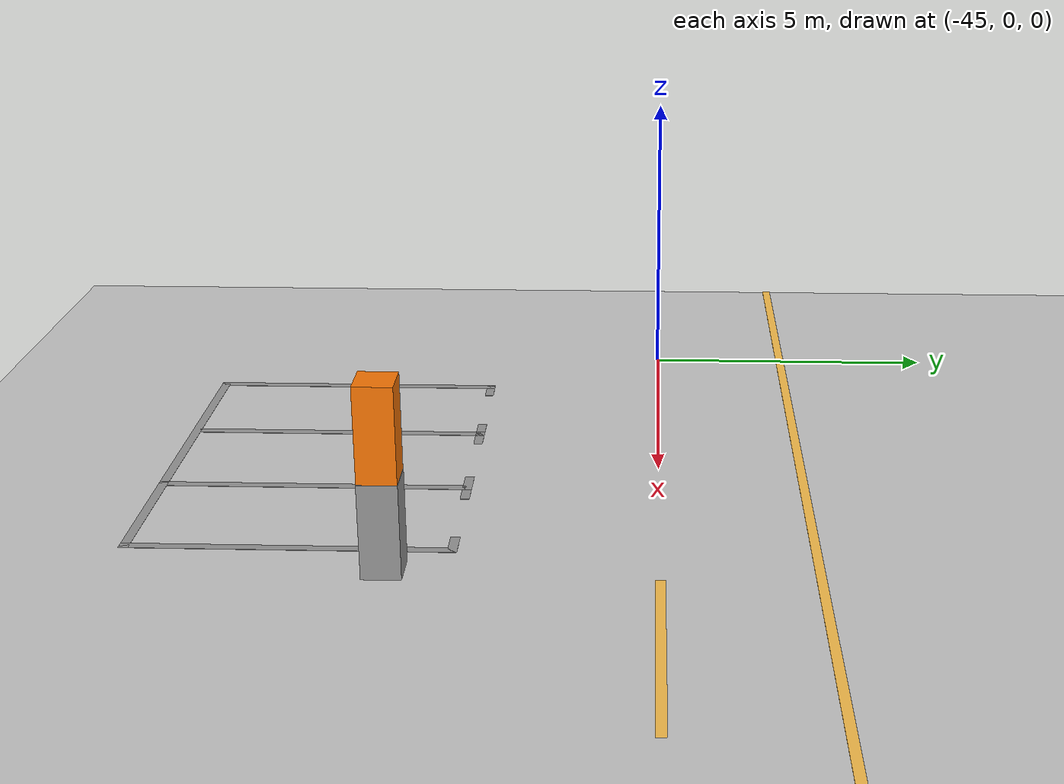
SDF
<sdf version="1.7">
 <world name="default">
  <model name="ground_plane">
   <static>1</static>
   <link name="link">
    <collision name="collision">
     <geometry><plane><normal>0 0 1</normal><size>100 100</size></plane></geometry>
     <surface><friction><ode><mu>100</mu><mu2>50</mu2></ode></friction></surface>
    </collision>
    <visual name="visual">
     <cast_shadows>0</cast_shadows>
     <geometry><plane><normal>0 0 1</normal><size>100 100</size></plane></geometry>
     <material>
      <script><uri>file://media/materials/scripts/gazebo.material</uri><name>Gazebo/Grey</name></script>
     </material>
    </visual>
   </link>
  </model>
  <model name="line_yellow_0_clone_0">
   <pose>-33.0972 0.143204 0 0 -0 0</pose>
   <link name="Wall_0">
    <collision name="Wall_0_Collision">
     <geometry><box><size>4 0.15 0.005</size></box></geometry>
     <pose>0 0 0.0025 0 -0 0</pose>
    </collision>
    <visual name="Wall_0_Visual">
     <pose>0 0 0.0025 0 -0 0</pose>
     <geometry><box><size>4 0.15 0.005</size></box></geometry>
     <material>
      <script><uri>file://media/materials/scripts/gazebo.material</uri><name>Gazebo/Grey</name></script>
      <ambient>1 0.764706 0.305882 1</ambient>
     </material>
     <meta><layer>0</layer></meta>
    </visual>
    <pose>-1.0475 -0.1225 0 0 -0 0</pose>
   </link>
   <static>1</static>
  </model>
  <model name="carport1_4_clone_8">
   <pose>-39.8001 -7.29993 0 0 -0 3.14141</pose>
   <link name="Wall_105">
    <collision name="Wall_105_Collision">
     <geometry><box><size>0.61 0.6 1.5</size></box></geometry>
     <pose>0 0 0.75 0 -0 0</pose>
    </collision>
    <visual name="Wall_105_Visual">
     <pose>0 0 0.75 0 -0 0</pose>
     <geometry><box><size>0.61 0.6 1.5</size></box></geometry>
     <material>
      <script><uri>file://media/materials/scripts/gazebo.material</uri><name>Gazebo/Grey</name></script>
      <ambient>1 1 1 1</ambient>
     </material>
     <meta><layer>0</layer></meta>
    </visual>
    <pose>-3.47407 -3.2865 0 0 -0 0</pose>
   </link>
   <link name="Wall_116">
    <collision name="Wall_116_Collision">
     <geometry><box><size>5.1 0.15 0.005</size></box></geometry>
     <pose>0 0 0.0025 0 -0 0</pose>
    </collision>
    <visual name="Wall_116_Visual">
     <pose>0 0 0.0025 0 -0 0</pose>
     <geometry><box><size>5.1 0.15 0.005</size></box></geometry>
     <material>
      <script><uri>file://media/materials/scripts/gazebo.material</uri><name>Gazebo/Grey</name></script>
      <ambient>1 1 1 1</ambient>
     </material>
     <meta><layer>0</layer></meta>
    </visual>
    <pose>-2.82307 -1.7385 0 0 -0 1.5708</pose>
   </link>
   <link name="Wall_124">
    <collision name="Wall_124_Collision">
     <geometry><box><size>5.1 0.15 0.005</size></box></geometry>
     <pose>0 0 0.0025 0 -0 0</pose>
    </collision>
    <visual name="Wall_124_Visual">
     <pose>0 0 0.0025 0 -0 0</pose>
     <geometry><box><size>5.1 0.15 0.005</size></box></geometry>
     <material>
      <script><uri>file://media/materials/scripts/gazebo.material</uri><name>Gazebo/Grey</name></script>
      <ambient>1 1 1 1</ambient>
     </material>
     <meta><layer>0</layer></meta>
    </visual>
    <pose>3.70393 -1.7305 0 0 -0 1.5708</pose>
   </link>
   <link name="Wall_146">
    <collision name="Wall_146_Collision">
     <geometry><box><size>6.67711 0.15 0.005</size></box></geometry>
     <pose>0 0 0.0025 0 -0 0</pose>
    </collision>
    <visual name="Wall_146_Visual">
     <pose>0 0 0.0025 0 -0 0</pose>
     <geometry><box><size>6.67711 0.15 0.005</size></box></geometry>
     <material>
      <script><uri>file://media/materials/scripts/gazebo.material</uri><name>Gazebo/Grey</name></script>
      <ambient>1 1 1 1</ambient>
     </material>
     <meta><layer>0</layer></meta>
    </visual>
    <pose>0.440428 0.7405 0 0 -0 0.001226</pose>
   </link>
   <link name="Wall_168">
    <collision name="Wall_168_Collision">
     <geometry><box><size>5.1 0.15 0.005</size></box></geometry>
     <pose>0 0 0.0025 0 -0 0</pose>
    </collision>
    <visual name="Wall_168_Visual">
     <pose>0 0 0.0025 0 -0 0</pose>
     <geometry><box><size>5.1 0.15 0.005</size></box></geometry>
     <material>
      <script><uri>file://media/materials/scripts/gazebo.material</uri><name>Gazebo/Grey</name></script>
      <ambient>1 1 1 1</ambient>
     </material>
     <meta><layer>0</layer></meta>
    </visual>
    <pose>-0.64827 -1.73839 0 0 -0 1.57088</pose>
   </link>
   <link name="Wall_173">
    <collision name="Wall_173_Collision">
     <geometry><box><size>5.1 0.15 0.005</size></box></geometry>
     <pose>0 0 0.0025 0 -0 0</pose>
    </collision>
    <visual name="Wall_173_Visual">
     <pose>0 0 0.0025 0 -0 0</pose>
     <geometry><box><size>5.1 0.15 0.005</size></box></geometry>
     <material>
      <script><uri>file://media/materials/scripts/gazebo.material</uri><name>Gazebo/Grey</name></script>
      <ambient>1 1 1 1</ambient>
     </material>
     <meta><layer>0</layer></meta>
    </visual>
    <pose>1.52673 -1.73839 0 0 -0 1.57088</pose>
   </link>
   <link name="Wall_177">
    <collision name="Wall_177_Collision">
     <geometry><box><size>0.6 0.59 3</size></box></geometry>
     <pose>0 0 1.5 0 -0 0</pose>
    </collision>
    <visual name="Wall_177_Visual">
     <pose>0 0 1.5 0 -0 0</pose>
     <geometry><box><size>0.6 0.59 3</size></box></geometry>
     <material>
      <script><uri>file://media/materials/scripts/gazebo.material</uri><name>Gazebo/Grey</name></script>
      <ambient>0.996078 0.47451 0.0196078 1</ambient>
     </material>
     <meta><layer>0</layer></meta>
    </visual>
    <pose>-3.47407 -3.2865 0 0 -0 0</pose>
   </link>
   <link name="Wall_179">
    <collision name="Wall_179_Collision">
     <geometry><box><size>0.5 0.15 0.005</size></box></geometry>
     <pose>0 0 0.0025 0 -0 0</pose>
    </collision>
    <visual name="Wall_179_Visual">
     <pose>0 0 0.0025 0 -0 0</pose>
     <geometry><box><size>0.5 0.15 0.005</size></box></geometry>
     <material>
      <script><uri>file://media/materials/scripts/gazebo.material</uri><name>Gazebo/Grey</name></script>
      <ambient>1 1 1 1</ambient>
     </material>
     <meta><layer>0</layer></meta>
    </visual>
    <pose>-2.64807 -4.2135 0 0 -0 0</pose>
   </link>
   <link name="Wall_181">
    <collision name="Wall_181_Collision">
     <geometry><box><size>0.5 0.15 0.005</size></box></geometry>
     <pose>0 0 0.0025 0 -0 0</pose>
    </collision>
    <visual name="Wall_181_Visual">
     <pose>0 0 0.0025 0 -0 0</pose>
     <geometry><box><size>0.5 0.15 0.005</size></box></geometry>
     <material>
      <script><uri>file://media/materials/scripts/gazebo.material</uri><name>Gazebo/Grey</name></script>
      <ambient>1 1 1 1</ambient>
     </material>
     <meta><layer>0</layer></meta>
    </visual>
    <pose>-0.823072 -4.2135 0 0 -0 3.14159</pose>
   </link>
   <link name="Wall_183">
    <collision name="Wall_183_Collision">
     <geometry><box><size>0.5 0.15 0.005</size></box></geometry>
     <pose>0 0 0.0025 0 -0 0</pose>
    </collision>
    <visual name="Wall_183_Visual">
     <pose>0 0 0.0025 0 -0 0</pose>
     <geometry><box><size>0.5 0.15 0.005</size></box></geometry>
     <material>
      <script><uri>file://media/materials/scripts/gazebo.material</uri><name>Gazebo/Grey</name></script>
      <ambient>1 1 1 1</ambient>
     </material>
     <meta><layer>0</layer></meta>
    </visual>
    <pose>-0.473072 -4.2135 0 0 -0 0</pose>
   </link>
   <link name="Wall_185">
    <collision name="Wall_185_Collision">
     <geometry><box><size>0.5 0.15 0.005</size></box></geometry>
     <pose>0 0 0.0025 0 -0 0</pose>
    </collision>
    <visual name="Wall_185_Visual">
     <pose>0 0 0.0025 0 -0 0</pose>
     <geometry><box><size>0.5 0.15 0.005</size></box></geometry>
     <material>
      <script><uri>file://media/materials/scripts/gazebo.material</uri><name>Gazebo/Grey</name></script>
      <ambient>1 1 1 1</ambient>
     </material>
     <meta><layer>0</layer></meta>
    </visual>
    <pose>1.35193 -4.2135 0 0 -0 3.14159</pose>
   </link>
   <link name="Wall_187">
    <collision name="Wall_187_Collision">
     <geometry><box><size>0.5 0.15 0.005</size></box></geometry>
     <pose>0 0 0.0025 0 -0 0</pose>
    </collision>
    <visual name="Wall_187_Visual">
     <pose>0 0 0.0025 0 -0 0</pose>
     <geometry><box><size>0.5 0.15 0.005</size></box></geometry>
     <material>
      <script><uri>file://media/materials/scripts/gazebo.material</uri><name>Gazebo/Grey</name></script>
      <ambient>1 1 1 1</ambient>
     </material>
     <meta><layer>0</layer></meta>
    </visual>
    <pose>1.70193 -4.2135 0 0 -0 0</pose>
   </link>
   <link name="Wall_189">
    <collision name="Wall_189_Collision">
     <geometry><box><size>0.5 0.15 0.005</size></box></geometry>
     <pose>0 0 0.0025 0 -0 0</pose>
    </collision>
    <visual name="Wall_189_Visual">
     <pose>0 0 0.0025 0 -0 0</pose>
     <geometry><box><size>0.5 0.15 0.005</size></box></geometry>
     <material>
      <script><uri>file://media/materials/scripts/gazebo.material</uri><name>Gazebo/Grey</name></script>
      <ambient>1 1 1 1</ambient>
     </material>
     <meta><layer>0</layer></meta>
    </visual>
    <pose>3.52893 -4.2055 0 0 -0 3.14159</pose>
   </link>
   <static>1</static>
  </model>
  <model name="ground_yellow_clone_0_clone">
   <pose>-34.0932 4.74212 0 0 -0 0</pose>
   <link name="Wall_226">
    <collision name="Wall_226_Collision">
     <geometry><box><size>50 0.15 0.005</size></box></geometry>
     <pose>0 0 0.0025 0 -0 0</pose>
    </collision>
    <visual name="Wall_226_Visual">
     <pose>0 0 0.0025 0 -0 0</pose>
     <geometry><box><size>50 0.15 0.005</size></box></geometry>
     <material>
      <script><uri>file://media/materials/scripts/gazebo.material</uri><name>Gazebo/Grey</name></script>
      <ambient>1 0.764706 0.305882 1</ambient>
     </material>
     <meta><layer>0</layer></meta>
    </visual>
    <pose>1e-06 -2.39116 0 0 -0 0</pose>
   </link>
   <static>1</static>
  </model>
 </world>
</sdf>
